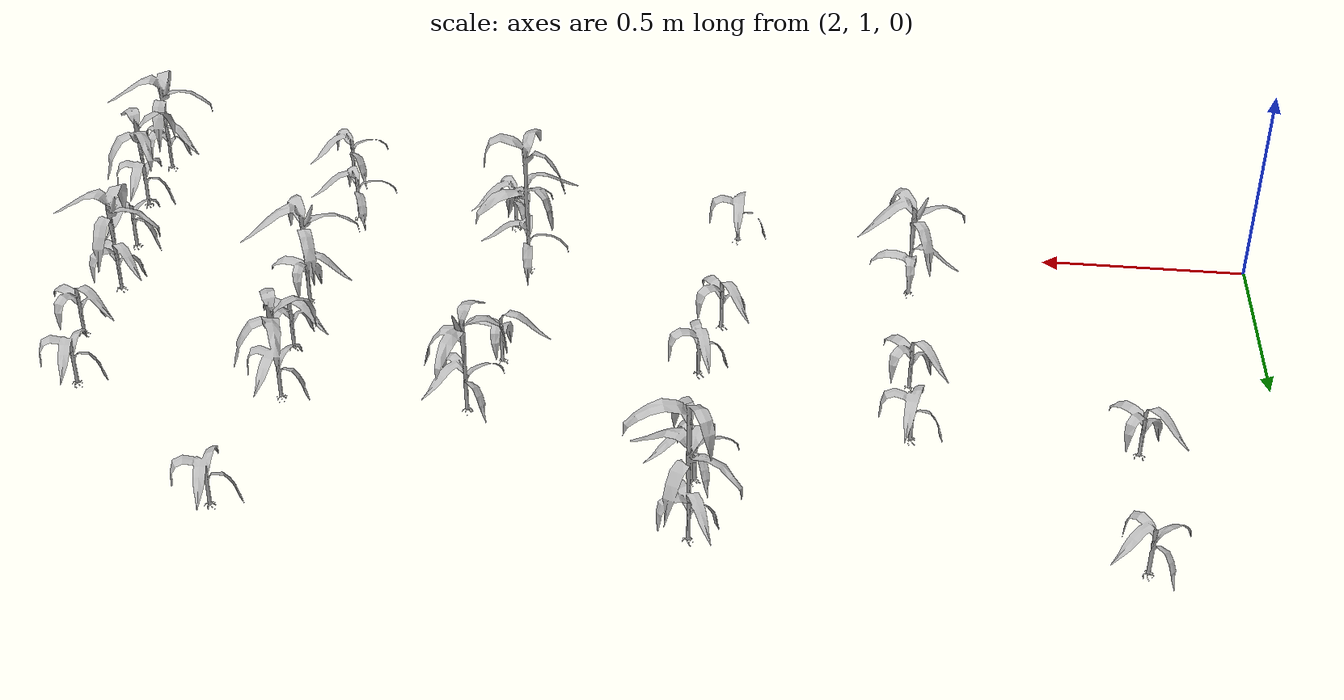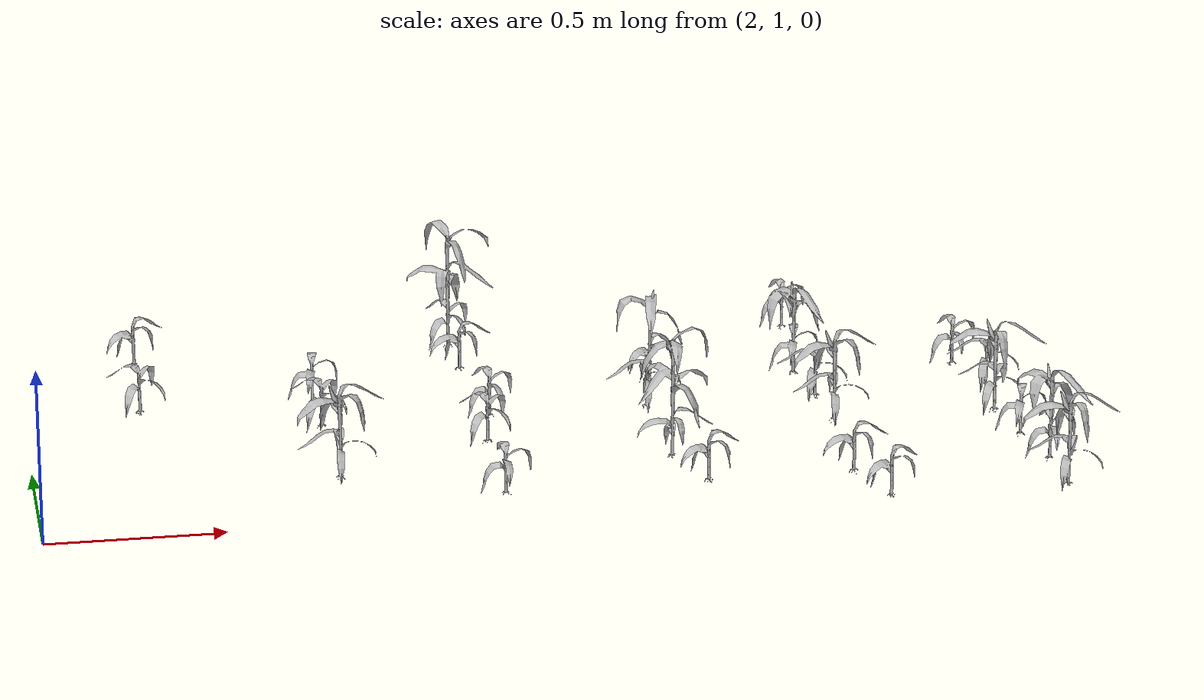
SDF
<sdf version="1.7">
 <world name="default">
  <model name="maize_2.3308409768195992_1.83">
   <static>1</static>
   <link name="link">
    <inertial>
     <mass>0.2</mass>
     <inertia>
      <ixx>0.166667</ixx>
      <ixy>0</ixy>
      <ixz>0</ixz>
      <iyy>0.166667</iyy>
      <iyz>0</iyz>
      <izz>0.166667</izz>
     </inertia>
    </inertial>
    <collision name="collision">
     <geometry><mesh><uri>model://corn_3/meshes/corn.dae</uri><scale>0.25 0.25 0.25</scale></mesh></geometry>
     <surface>
      <friction><ode><mu>0</mu><mu2>0</mu2></ode></friction>
      <contact><ode><kp>0</kp><kd>0</kd><max_vel>0</max_vel><min_depth>0.002</min_depth></ode></contact>
     </surface>
    </collision>
    <visual name="visual">
     <geometry><mesh><uri>model://corn_3/meshes/corn.dae</uri><scale>0.25 0.25 0.25</scale></mesh></geometry>
    </visual>
    <velocity_decay><linear>0</linear><angular>0</angular></velocity_decay>
   </link>
   <pose>2.33084 1.83 0.05 0 -0 2.43741</pose>
  </model>
  <model name="maize_2.3444646868570334_2.2200000000000006">
   <static>1</static>
   <link name="link">
    <inertial>
     <mass>0.2</mass>
     <inertia>
      <ixx>0.166667</ixx>
      <ixy>0</ixy>
      <ixz>0</ixz>
      <iyy>0.166667</iyy>
      <iyz>0</iyz>
      <izz>0.166667</izz>
     </inertia>
    </inertial>
    <collision name="collision">
     <geometry><mesh><uri>model://corn_3/meshes/corn.dae</uri><scale>0.25 0.25 0.25</scale></mesh></geometry>
     <surface>
      <friction><ode><mu>0</mu><mu2>0</mu2></ode></friction>
      <contact><ode><kp>0</kp><kd>0</kd><max_vel>0</max_vel><min_depth>0.002</min_depth></ode></contact>
     </surface>
    </collision>
    <visual name="visual">
     <geometry><mesh><uri>model://corn_3/meshes/corn.dae</uri><scale>0.25 0.25 0.25</scale></mesh></geometry>
    </visual>
    <velocity_decay><linear>0</linear><angular>0</angular></velocity_decay>
   </link>
   <pose>2.34447 2.22 0.05 0 -0 0.729206</pose>
  </model>
  <model name="maize_2.839651463641147_1.245">
   <static>1</static>
   <link name="link">
    <inertial>
     <mass>0.2</mass>
     <inertia>
      <ixx>0.166667</ixx>
      <ixy>0</ixy>
      <ixz>0</ixz>
      <iyy>0.166667</iyy>
      <iyz>0</iyz>
      <izz>0.166667</izz>
     </inertia>
    </inertial>
    <collision name="collision">
     <geometry><mesh><uri>model://corn_4/meshes/corn.dae</uri><scale>0.25 0.25 0.25</scale></mesh></geometry>
     <surface>
      <friction><ode><mu>0</mu><mu2>0</mu2></ode></friction>
      <contact><ode><kp>0</kp><kd>0</kd><max_vel>0</max_vel><min_depth>0.002</min_depth></ode></contact>
     </surface>
    </collision>
    <visual name="visual">
     <geometry><mesh><uri>model://corn_4/meshes/corn.dae</uri><scale>0.25 0.25 0.25</scale></mesh></geometry>
    </visual>
    <velocity_decay><linear>0</linear><angular>0</angular></velocity_decay>
   </link>
   <pose>2.83965 1.245 0.05 0 -0 3.03798</pose>
  </model>
  <model name="maize_2.832654821227765_1.6350000000000007">
   <static>1</static>
   <link name="link">
    <inertial>
     <mass>0.2</mass>
     <inertia>
      <ixx>0.166667</ixx>
      <ixy>0</ixy>
      <ixz>0</ixz>
      <iyy>0.166667</iyy>
      <iyz>0</iyz>
      <izz>0.166667</izz>
     </inertia>
    </inertial>
    <collision name="collision">
     <geometry><mesh><uri>model://corn_3/meshes/corn.dae</uri><scale>0.25 0.25 0.25</scale></mesh></geometry>
     <surface>
      <friction><ode><mu>0</mu><mu2>0</mu2></ode></friction>
      <contact><ode><kp>0</kp><kd>0</kd><max_vel>0</max_vel><min_depth>0.002</min_depth></ode></contact>
     </surface>
    </collision>
    <visual name="visual">
     <geometry><mesh><uri>model://corn_3/meshes/corn.dae</uri><scale>0.25 0.25 0.25</scale></mesh></geometry>
    </visual>
    <velocity_decay><linear>0</linear><angular>0</angular></velocity_decay>
   </link>
   <pose>2.83265 1.635 0.05 0 -0 2.37674</pose>
  </model>
  <model name="maize_2.8282975888437045_1.83">
   <static>1</static>
   <link name="link">
    <inertial>
     <mass>0.2</mass>
     <inertia>
      <ixx>0.166667</ixx>
      <ixy>0</ixy>
      <ixz>0</ixz>
      <iyy>0.166667</iyy>
      <iyz>0</iyz>
      <izz>0.166667</izz>
     </inertia>
    </inertial>
    <collision name="collision">
     <geometry><mesh><uri>model://corn_3/meshes/corn.dae</uri><scale>0.25 0.25 0.25</scale></mesh></geometry>
     <surface>
      <friction><ode><mu>0</mu><mu2>0</mu2></ode></friction>
      <contact><ode><kp>0</kp><kd>0</kd><max_vel>0</max_vel><min_depth>0.002</min_depth></ode></contact>
     </surface>
    </collision>
    <visual name="visual">
     <geometry><mesh><uri>model://corn_3/meshes/corn.dae</uri><scale>0.25 0.25 0.25</scale></mesh></geometry>
    </visual>
    <velocity_decay><linear>0</linear><angular>0</angular></velocity_decay>
   </link>
   <pose>2.8283 1.83 0.05 0 -0 1.46382</pose>
  </model>
  <model name="maize_3.271648656339609_1.0500000000000007">
   <static>1</static>
   <link name="link">
    <inertial>
     <mass>0.2</mass>
     <inertia>
      <ixx>0.166667</ixx>
      <ixy>0</ixy>
      <ixz>0</ixz>
      <iyy>0.166667</iyy>
      <iyz>0</iyz>
      <izz>0.166667</izz>
     </inertia>
    </inertial>
    <collision name="collision">
     <geometry><mesh><uri>model://corn_3/meshes/corn.dae</uri><scale>0.25 0.25 0.25</scale></mesh></geometry>
     <surface>
      <friction><ode><mu>0</mu><mu2>0</mu2></ode></friction>
      <contact><ode><kp>0</kp><kd>0</kd><max_vel>0</max_vel><min_depth>0.002</min_depth></ode></contact>
     </surface>
    </collision>
    <visual name="visual">
     <geometry><mesh><uri>model://corn_3/meshes/corn.dae</uri><scale>0.25 0.25 0.25</scale></mesh></geometry>
    </visual>
    <velocity_decay><linear>0</linear><angular>0</angular></velocity_decay>
   </link>
   <pose>3.27165 1.05 0.05 0 -0 1.64438</pose>
  </model>
  <model name="maize_3.2804610687075364_1.4400000000000004">
   <static>1</static>
   <link name="link">
    <inertial>
     <mass>0.2</mass>
     <inertia>
      <ixx>0.166667</ixx>
      <ixy>0</ixy>
      <ixz>0</ixz>
      <iyy>0.166667</iyy>
      <iyz>0</iyz>
      <izz>0.166667</izz>
     </inertia>
    </inertial>
    <collision name="collision">
     <geometry><mesh><uri>model://corn_3/meshes/corn.dae</uri><scale>0.25 0.25 0.25</scale></mesh></geometry>
     <surface>
      <friction><ode><mu>0</mu><mu2>0</mu2></ode></friction>
      <contact><ode><kp>0</kp><kd>0</kd><max_vel>0</max_vel><min_depth>0.002</min_depth></ode></contact>
     </surface>
    </collision>
    <visual name="visual">
     <geometry><mesh><uri>model://corn_3/meshes/corn.dae</uri><scale>0.25 0.25 0.25</scale></mesh></geometry>
    </visual>
    <velocity_decay><linear>0</linear><angular>0</angular></velocity_decay>
   </link>
   <pose>3.28046 1.44 0.05 0 -0 2.24086</pose>
  </model>
  <model name="maize_3.3164686344825123_1.6350000000000007">
   <static>1</static>
   <link name="link">
    <inertial>
     <mass>0.2</mass>
     <inertia>
      <ixx>0.166667</ixx>
      <ixy>0</ixy>
      <ixz>0</ixz>
      <iyy>0.166667</iyy>
      <iyz>0</iyz>
      <izz>0.166667</izz>
     </inertia>
    </inertial>
    <collision name="collision">
     <geometry><mesh><uri>model://corn_3/meshes/corn.dae</uri><scale>0.25 0.25 0.25</scale></mesh></geometry>
     <surface>
      <friction><ode><mu>0</mu><mu2>0</mu2></ode></friction>
      <contact><ode><kp>0</kp><kd>0</kd><max_vel>0</max_vel><min_depth>0.002</min_depth></ode></contact>
     </surface>
    </collision>
    <visual name="visual">
     <geometry><mesh><uri>model://corn_3/meshes/corn.dae</uri><scale>0.25 0.25 0.25</scale></mesh></geometry>
    </visual>
    <velocity_decay><linear>0</linear><angular>0</angular></velocity_decay>
   </link>
   <pose>3.31647 1.635 0.05 0 -0 1.90494</pose>
  </model>
  <model name="maize_3.2865250381390263_2.0250000000000004">
   <static>1</static>
   <link name="link">
    <inertial>
     <mass>0.2</mass>
     <inertia>
      <ixx>0.166667</ixx>
      <ixy>0</ixy>
      <ixz>0</ixz>
      <iyy>0.166667</iyy>
      <iyz>0</iyz>
      <izz>0.166667</izz>
     </inertia>
    </inertial>
    <collision name="collision">
     <geometry><mesh><uri>model://corn_3/meshes/corn.dae</uri><scale>0.25 0.25 0.25</scale></mesh></geometry>
     <surface>
      <friction><ode><mu>0</mu><mu2>0</mu2></ode></friction>
      <contact><ode><kp>0</kp><kd>0</kd><max_vel>0</max_vel><min_depth>0.002</min_depth></ode></contact>
     </surface>
    </collision>
    <visual name="visual">
     <geometry><mesh><uri>model://corn_3/meshes/corn.dae</uri><scale>0.25 0.25 0.25</scale></mesh></geometry>
    </visual>
    <velocity_decay><linear>0</linear><angular>0</angular></velocity_decay>
   </link>
   <pose>3.28653 2.025 0.05 0 -0 0.513057</pose>
  </model>
  <model name="maize_3.280938345294778_2.2200000000000006">
   <static>1</static>
   <link name="link">
    <inertial>
     <mass>0.2</mass>
     <inertia>
      <ixx>0.166667</ixx>
      <ixy>0</ixy>
      <ixz>0</ixz>
      <iyy>0.166667</iyy>
      <iyz>0</iyz>
      <izz>0.166667</izz>
     </inertia>
    </inertial>
    <collision name="collision">
     <geometry><mesh><uri>model://corn_5/meshes/corn.dae</uri><scale>0.25 0.25 0.25</scale></mesh></geometry>
     <surface>
      <friction><ode><mu>0</mu><mu2>0</mu2></ode></friction>
      <contact><ode><kp>0</kp><kd>0</kd><max_vel>0</max_vel><min_depth>0.002</min_depth></ode></contact>
     </surface>
    </collision>
    <visual name="visual">
     <geometry><mesh><uri>model://corn_5/meshes/corn.dae</uri><scale>0.25 0.25 0.25</scale></mesh></geometry>
    </visual>
    <velocity_decay><linear>0</linear><angular>0</angular></velocity_decay>
   </link>
   <pose>3.28094 2.22 0.05 0 -0 2.08448</pose>
  </model>
  <model name="maize_3.8401776713780302_1.0500000000000007">
   <static>1</static>
   <link name="link">
    <inertial>
     <mass>0.2</mass>
     <inertia>
      <ixx>0.166667</ixx>
      <ixy>0</ixy>
      <ixz>0</ixz>
      <iyy>0.166667</iyy>
      <iyz>0</iyz>
      <izz>0.166667</izz>
     </inertia>
    </inertial>
    <collision name="collision">
     <geometry><mesh><uri>model://corn_3/meshes/corn.dae</uri><scale>0.25 0.25 0.25</scale></mesh></geometry>
     <surface>
      <friction><ode><mu>0</mu><mu2>0</mu2></ode></friction>
      <contact><ode><kp>0</kp><kd>0</kd><max_vel>0</max_vel><min_depth>0.002</min_depth></ode></contact>
     </surface>
    </collision>
    <visual name="visual">
     <geometry><mesh><uri>model://corn_3/meshes/corn.dae</uri><scale>0.25 0.25 0.25</scale></mesh></geometry>
    </visual>
    <velocity_decay><linear>0</linear><angular>0</angular></velocity_decay>
   </link>
   <pose>3.84018 1.05 0.05 0 -0 0.59096</pose>
  </model>
  <model name="maize_3.7745310945470045_1.245">
   <static>1</static>
   <link name="link">
    <inertial>
     <mass>0.2</mass>
     <inertia>
      <ixx>0.166667</ixx>
      <ixy>0</ixy>
      <ixz>0</ixz>
      <iyy>0.166667</iyy>
      <iyz>0</iyz>
      <izz>0.166667</izz>
     </inertia>
    </inertial>
    <collision name="collision">
     <geometry><mesh><uri>model://corn_5/meshes/corn.dae</uri><scale>0.25 0.25 0.25</scale></mesh></geometry>
     <surface>
      <friction><ode><mu>0</mu><mu2>0</mu2></ode></friction>
      <contact><ode><kp>0</kp><kd>0</kd><max_vel>0</max_vel><min_depth>0.002</min_depth></ode></contact>
     </surface>
    </collision>
    <visual name="visual">
     <geometry><mesh><uri>model://corn_5/meshes/corn.dae</uri><scale>0.25 0.25 0.25</scale></mesh></geometry>
    </visual>
    <velocity_decay><linear>0</linear><angular>0</angular></velocity_decay>
   </link>
   <pose>3.77453 1.245 0.05 0 -0 0.101549</pose>
  </model>
  <model name="maize_3.773368642236777_1.6350000000000007">
   <static>1</static>
   <link name="link">
    <inertial>
     <mass>0.2</mass>
     <inertia>
      <ixx>0.166667</ixx>
      <ixy>0</ixy>
      <ixz>0</ixz>
      <iyy>0.166667</iyy>
      <iyz>0</iyz>
      <izz>0.166667</izz>
     </inertia>
    </inertial>
    <collision name="collision">
     <geometry><mesh><uri>model://corn_3/meshes/corn.dae</uri><scale>0.25 0.25 0.25</scale></mesh></geometry>
     <surface>
      <friction><ode><mu>0</mu><mu2>0</mu2></ode></friction>
      <contact><ode><kp>0</kp><kd>0</kd><max_vel>0</max_vel><min_depth>0.002</min_depth></ode></contact>
     </surface>
    </collision>
    <visual name="visual">
     <geometry><mesh><uri>model://corn_3/meshes/corn.dae</uri><scale>0.25 0.25 0.25</scale></mesh></geometry>
    </visual>
    <velocity_decay><linear>0</linear><angular>0</angular></velocity_decay>
   </link>
   <pose>3.77337 1.635 0.05 0 -0 3.03688</pose>
  </model>
  <model name="maize_3.819317429825554_1.83">
   <static>1</static>
   <link name="link">
    <inertial>
     <mass>0.2</mass>
     <inertia>
      <ixx>0.166667</ixx>
      <ixy>0</ixy>
      <ixz>0</ixz>
      <iyy>0.166667</iyy>
      <iyz>0</iyz>
      <izz>0.166667</izz>
     </inertia>
    </inertial>
    <collision name="collision">
     <geometry><mesh><uri>model://corn_4/meshes/corn.dae</uri><scale>0.25 0.25 0.25</scale></mesh></geometry>
     <surface>
      <friction><ode><mu>0</mu><mu2>0</mu2></ode></friction>
      <contact><ode><kp>0</kp><kd>0</kd><max_vel>0</max_vel><min_depth>0.002</min_depth></ode></contact>
     </surface>
    </collision>
    <visual name="visual">
     <geometry><mesh><uri>model://corn_4/meshes/corn.dae</uri><scale>0.25 0.25 0.25</scale></mesh></geometry>
    </visual>
    <velocity_decay><linear>0</linear><angular>0</angular></velocity_decay>
   </link>
   <pose>3.81932 1.83 0.05 0 -0 0.825203</pose>
  </model>
  <model name="maize_4.311551614640147_0.8550000000000004">
   <static>1</static>
   <link name="link">
    <inertial>
     <mass>0.2</mass>
     <inertia>
      <ixx>0.166667</ixx>
      <ixy>0</ixy>
      <ixz>0</ixz>
      <iyy>0.166667</iyy>
      <iyz>0</iyz>
      <izz>0.166667</izz>
     </inertia>
    </inertial>
    <collision name="collision">
     <geometry><mesh><uri>model://corn_3/meshes/corn.dae</uri><scale>0.25 0.25 0.25</scale></mesh></geometry>
     <surface>
      <friction><ode><mu>0</mu><mu2>0</mu2></ode></friction>
      <contact><ode><kp>0</kp><kd>0</kd><max_vel>0</max_vel><min_depth>0.002</min_depth></ode></contact>
     </surface>
    </collision>
    <visual name="visual">
     <geometry><mesh><uri>model://corn_3/meshes/corn.dae</uri><scale>0.25 0.25 0.25</scale></mesh></geometry>
    </visual>
    <velocity_decay><linear>0</linear><angular>0</angular></velocity_decay>
   </link>
   <pose>4.31155 0.855 0.05 0 -0 0.703862</pose>
  </model>
  <model name="maize_4.250752469047756_1.0500000000000007">
   <static>1</static>
   <link name="link">
    <inertial>
     <mass>0.2</mass>
     <inertia>
      <ixx>0.166667</ixx>
      <ixy>0</ixy>
      <ixz>0</ixz>
      <iyy>0.166667</iyy>
      <iyz>0</iyz>
      <izz>0.166667</izz>
     </inertia>
    </inertial>
    <collision name="collision">
     <geometry><mesh><uri>model://corn_3/meshes/corn.dae</uri><scale>0.25 0.25 0.25</scale></mesh></geometry>
     <surface>
      <friction><ode><mu>0</mu><mu2>0</mu2></ode></friction>
      <contact><ode><kp>0</kp><kd>0</kd><max_vel>0</max_vel><min_depth>0.002</min_depth></ode></contact>
     </surface>
    </collision>
    <visual name="visual">
     <geometry><mesh><uri>model://corn_3/meshes/corn.dae</uri><scale>0.25 0.25 0.25</scale></mesh></geometry>
    </visual>
    <velocity_decay><linear>0</linear><angular>0</angular></velocity_decay>
   </link>
   <pose>4.25075 1.05 0.05 0 -0 0.424687</pose>
  </model>
  <model name="maize_4.281948090518127_1.4400000000000004">
   <static>1</static>
   <link name="link">
    <inertial>
     <mass>0.2</mass>
     <inertia>
      <ixx>0.166667</ixx>
      <ixy>0</ixy>
      <ixz>0</ixz>
      <iyy>0.166667</iyy>
      <iyz>0</iyz>
      <izz>0.166667</izz>
     </inertia>
    </inertial>
    <collision name="collision">
     <geometry><mesh><uri>model://corn_4/meshes/corn.dae</uri><scale>0.25 0.25 0.25</scale></mesh></geometry>
     <surface>
      <friction><ode><mu>0</mu><mu2>0</mu2></ode></friction>
      <contact><ode><kp>0</kp><kd>0</kd><max_vel>0</max_vel><min_depth>0.002</min_depth></ode></contact>
     </surface>
    </collision>
    <visual name="visual">
     <geometry><mesh><uri>model://corn_4/meshes/corn.dae</uri><scale>0.25 0.25 0.25</scale></mesh></geometry>
    </visual>
    <velocity_decay><linear>0</linear><angular>0</angular></velocity_decay>
   </link>
   <pose>4.28195 1.44 0.05 0 -0 2.98277</pose>
  </model>
  <model name="maize_4.26969170760366_1.6350000000000007">
   <static>1</static>
   <link name="link">
    <inertial>
     <mass>0.2</mass>
     <inertia>
      <ixx>0.166667</ixx>
      <ixy>0</ixy>
      <ixz>0</ixz>
      <iyy>0.166667</iyy>
      <iyz>0</iyz>
      <izz>0.166667</izz>
     </inertia>
    </inertial>
    <collision name="collision">
     <geometry><mesh><uri>model://corn_3/meshes/corn.dae</uri><scale>0.25 0.25 0.25</scale></mesh></geometry>
     <surface>
      <friction><ode><mu>0</mu><mu2>0</mu2></ode></friction>
      <contact><ode><kp>0</kp><kd>0</kd><max_vel>0</max_vel><min_depth>0.002</min_depth></ode></contact>
     </surface>
    </collision>
    <visual name="visual">
     <geometry><mesh><uri>model://corn_3/meshes/corn.dae</uri><scale>0.25 0.25 0.25</scale></mesh></geometry>
    </visual>
    <velocity_decay><linear>0</linear><angular>0</angular></velocity_decay>
   </link>
   <pose>4.26969 1.635 0.05 0 -0 2.66799</pose>
  </model>
  <model name="maize_4.247751077865788_1.83">
   <static>1</static>
   <link name="link">
    <inertial>
     <mass>0.2</mass>
     <inertia>
      <ixx>0.166667</ixx>
      <ixy>0</ixy>
      <ixz>0</ixz>
      <iyy>0.166667</iyy>
      <iyz>0</iyz>
      <izz>0.166667</izz>
     </inertia>
    </inertial>
    <collision name="collision">
     <geometry><mesh><uri>model://corn_4/meshes/corn.dae</uri><scale>0.25 0.25 0.25</scale></mesh></geometry>
     <surface>
      <friction><ode><mu>0</mu><mu2>0</mu2></ode></friction>
      <contact><ode><kp>0</kp><kd>0</kd><max_vel>0</max_vel><min_depth>0.002</min_depth></ode></contact>
     </surface>
    </collision>
    <visual name="visual">
     <geometry><mesh><uri>model://corn_4/meshes/corn.dae</uri><scale>0.25 0.25 0.25</scale></mesh></geometry>
    </visual>
    <velocity_decay><linear>0</linear><angular>0</angular></velocity_decay>
   </link>
   <pose>4.24775 1.83 0.05 0 -0 1.39981</pose>
  </model>
  <model name="maize_4.29646335956962_2.2200000000000006">
   <static>1</static>
   <link name="link">
    <inertial>
     <mass>0.2</mass>
     <inertia>
      <ixx>0.166667</ixx>
      <ixy>0</ixy>
      <ixz>0</ixz>
      <iyy>0.166667</iyy>
      <iyz>0</iyz>
      <izz>0.166667</izz>
     </inertia>
    </inertial>
    <collision name="collision">
     <geometry><mesh><uri>model://corn_3/meshes/corn.dae</uri><scale>0.25 0.25 0.25</scale></mesh></geometry>
     <surface>
      <friction><ode><mu>0</mu><mu2>0</mu2></ode></friction>
      <contact><ode><kp>0</kp><kd>0</kd><max_vel>0</max_vel><min_depth>0.002</min_depth></ode></contact>
     </surface>
    </collision>
    <visual name="visual">
     <geometry><mesh><uri>model://corn_3/meshes/corn.dae</uri><scale>0.25 0.25 0.25</scale></mesh></geometry>
    </visual>
    <velocity_decay><linear>0</linear><angular>0</angular></velocity_decay>
   </link>
   <pose>4.29646 2.22 0.05 0 -0 1.74457</pose>
  </model>
  <model name="maize_4.812344547363482_0.8550000000000004">
   <static>1</static>
   <link name="link">
    <inertial>
     <mass>0.2</mass>
     <inertia>
      <ixx>0.166667</ixx>
      <ixy>0</ixy>
      <ixz>0</ixz>
      <iyy>0.166667</iyy>
      <iyz>0</iyz>
      <izz>0.166667</izz>
     </inertia>
    </inertial>
    <collision name="collision">
     <geometry><mesh><uri>model://corn_4/meshes/corn.dae</uri><scale>0.25 0.25 0.25</scale></mesh></geometry>
     <surface>
      <friction><ode><mu>0</mu><mu2>0</mu2></ode></friction>
      <contact><ode><kp>0</kp><kd>0</kd><max_vel>0</max_vel><min_depth>0.002</min_depth></ode></contact>
     </surface>
    </collision>
    <visual name="visual">
     <geometry><mesh><uri>model://corn_4/meshes/corn.dae</uri><scale>0.25 0.25 0.25</scale></mesh></geometry>
    </visual>
    <velocity_decay><linear>0</linear><angular>0</angular></velocity_decay>
   </link>
   <pose>4.81234 0.855 0.05 0 -0 2.6349</pose>
  </model>
  <model name="maize_4.812712963069707_1.0500000000000007">
   <static>1</static>
   <link name="link">
    <inertial>
     <mass>0.2</mass>
     <inertia>
      <ixx>0.166667</ixx>
      <ixy>0</ixy>
      <ixz>0</ixz>
      <iyy>0.166667</iyy>
      <iyz>0</iyz>
      <izz>0.166667</izz>
     </inertia>
    </inertial>
    <collision name="collision">
     <geometry><mesh><uri>model://corn_4/meshes/corn.dae</uri><scale>0.25 0.25 0.25</scale></mesh></geometry>
     <surface>
      <friction><ode><mu>0</mu><mu2>0</mu2></ode></friction>
      <contact><ode><kp>0</kp><kd>0</kd><max_vel>0</max_vel><min_depth>0.002</min_depth></ode></contact>
     </surface>
    </collision>
    <visual name="visual">
     <geometry><mesh><uri>model://corn_4/meshes/corn.dae</uri><scale>0.25 0.25 0.25</scale></mesh></geometry>
    </visual>
    <velocity_decay><linear>0</linear><angular>0</angular></velocity_decay>
   </link>
   <pose>4.81271 1.05 0.05 0 -0 1.60775</pose>
  </model>
  <model name="maize_4.7797072268351295_1.245">
   <static>1</static>
   <link name="link">
    <inertial>
     <mass>0.2</mass>
     <inertia>
      <ixx>0.166667</ixx>
      <ixy>0</ixy>
      <ixz>0</ixz>
      <iyy>0.166667</iyy>
      <iyz>0</iyz>
      <izz>0.166667</izz>
     </inertia>
    </inertial>
    <collision name="collision">
     <geometry><mesh><uri>model://corn_3/meshes/corn.dae</uri><scale>0.25 0.25 0.25</scale></mesh></geometry>
     <surface>
      <friction><ode><mu>0</mu><mu2>0</mu2></ode></friction>
      <contact><ode><kp>0</kp><kd>0</kd><max_vel>0</max_vel><min_depth>0.002</min_depth></ode></contact>
     </surface>
    </collision>
    <visual name="visual">
     <geometry><mesh><uri>model://corn_3/meshes/corn.dae</uri><scale>0.25 0.25 0.25</scale></mesh></geometry>
    </visual>
    <velocity_decay><linear>0</linear><angular>0</angular></velocity_decay>
   </link>
   <pose>4.77971 1.245 0.05 0 -0 1.31242</pose>
  </model>
  <model name="maize_4.754082812852387_1.4400000000000004">
   <static>1</static>
   <link name="link">
    <inertial>
     <mass>0.2</mass>
     <inertia>
      <ixx>0.166667</ixx>
      <ixy>0</ixy>
      <ixz>0</ixz>
      <iyy>0.166667</iyy>
      <iyz>0</iyz>
      <izz>0.166667</izz>
     </inertia>
    </inertial>
    <collision name="collision">
     <geometry><mesh><uri>model://corn_4/meshes/corn.dae</uri><scale>0.25 0.25 0.25</scale></mesh></geometry>
     <surface>
      <friction><ode><mu>0</mu><mu2>0</mu2></ode></friction>
      <contact><ode><kp>0</kp><kd>0</kd><max_vel>0</max_vel><min_depth>0.002</min_depth></ode></contact>
     </surface>
    </collision>
    <visual name="visual">
     <geometry><mesh><uri>model://corn_4/meshes/corn.dae</uri><scale>0.25 0.25 0.25</scale></mesh></geometry>
    </visual>
    <velocity_decay><linear>0</linear><angular>0</angular></velocity_decay>
   </link>
   <pose>4.75408 1.44 0.05 0 -0 2.43079</pose>
  </model>
  <model name="maize_4.779592070371671_1.6350000000000007">
   <static>1</static>
   <link name="link">
    <inertial>
     <mass>0.2</mass>
     <inertia>
      <ixx>0.166667</ixx>
      <ixy>0</ixy>
      <ixz>0</ixz>
      <iyy>0.166667</iyy>
      <iyz>0</iyz>
      <izz>0.166667</izz>
     </inertia>
    </inertial>
    <collision name="collision">
     <geometry><mesh><uri>model://corn_3/meshes/corn.dae</uri><scale>0.25 0.25 0.25</scale></mesh></geometry>
     <surface>
      <friction><ode><mu>0</mu><mu2>0</mu2></ode></friction>
      <contact><ode><kp>0</kp><kd>0</kd><max_vel>0</max_vel><min_depth>0.002</min_depth></ode></contact>
     </surface>
    </collision>
    <visual name="visual">
     <geometry><mesh><uri>model://corn_3/meshes/corn.dae</uri><scale>0.25 0.25 0.25</scale></mesh></geometry>
    </visual>
    <velocity_decay><linear>0</linear><angular>0</angular></velocity_decay>
   </link>
   <pose>4.77959 1.635 0.05 0 -0 2.67741</pose>
  </model>
  <model name="maize_4.726469583772249_1.83">
   <static>1</static>
   <link name="link">
    <inertial>
     <mass>0.2</mass>
     <inertia>
      <ixx>0.166667</ixx>
      <ixy>0</ixy>
      <ixz>0</ixz>
      <iyy>0.166667</iyy>
      <iyz>0</iyz>
      <izz>0.166667</izz>
     </inertia>
    </inertial>
    <collision name="collision">
     <geometry><mesh><uri>model://corn_3/meshes/corn.dae</uri><scale>0.25 0.25 0.25</scale></mesh></geometry>
     <surface>
      <friction><ode><mu>0</mu><mu2>0</mu2></ode></friction>
      <contact><ode><kp>0</kp><kd>0</kd><max_vel>0</max_vel><min_depth>0.002</min_depth></ode></contact>
     </surface>
    </collision>
    <visual name="visual">
     <geometry><mesh><uri>model://corn_3/meshes/corn.dae</uri><scale>0.25 0.25 0.25</scale></mesh></geometry>
    </visual>
    <velocity_decay><linear>0</linear><angular>0</angular></velocity_decay>
   </link>
   <pose>4.72647 1.83 0.05 0 -0 1.73722</pose>
  </model>
 </world>
</sdf>
